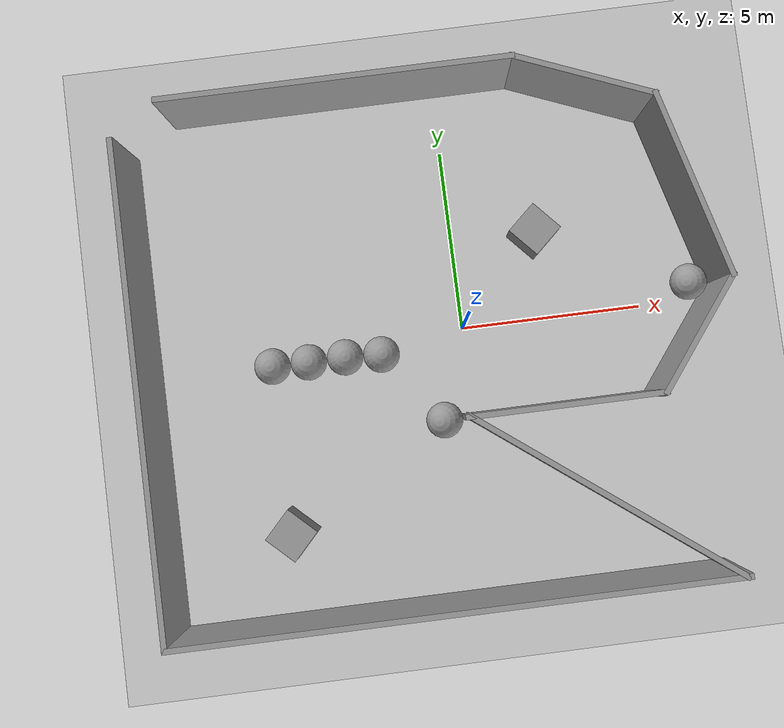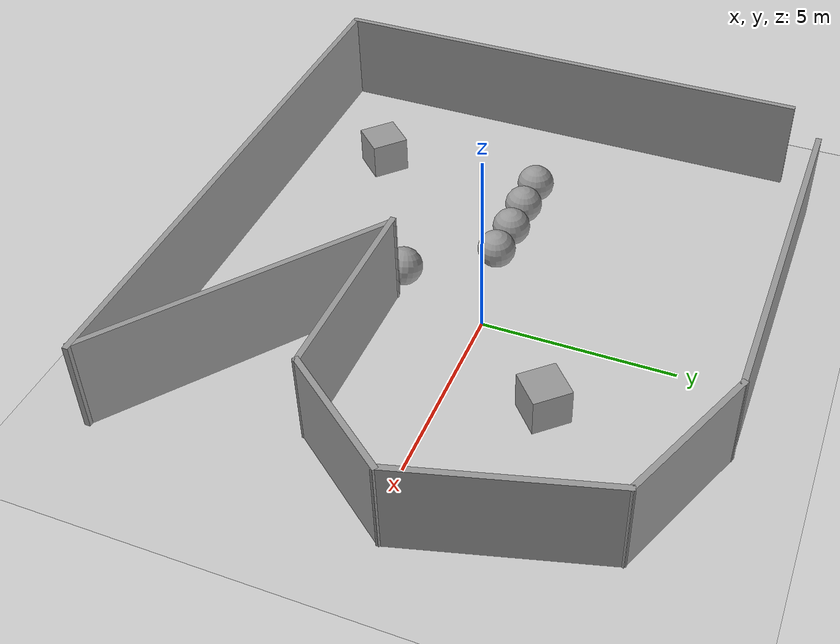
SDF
<sdf version="1.6">
 <world name="default">
  <light name="sun" type="directional">
   <pose>0 0 10 0 -0 0</pose>
   <diffuse>0.8 0.8 0.8 1</diffuse>
   <specular>0.1 0.1 0.1 1</specular>
   <attenuation>
    <range>1000</range>
    <constant>0.9</constant>
    <linear>0.01</linear>
    <quadratic>0.001</quadratic>
   </attenuation>
   <direction>-0.5 0.5 -1</direction>
  </light>
  <model name="ground_plane">
   <static>1</static>
   <link name="link">
    <collision name="collision">
     <geometry><plane><normal>0 0 1</normal><size>100 100</size></plane></geometry>
     <surface><friction><ode><mu>100</mu><mu2>50</mu2></ode></friction></surface>
    </collision>
    <visual name="visual">
     <cast_shadows>0</cast_shadows>
     <geometry><plane><normal>0 0 1</normal><size>100 100</size></plane></geometry>
     <material>
      <script><uri>file://media/materials/scripts/gazebo.material</uri><name>Gazebo/Grey</name></script>
     </material>
    </visual>
   </link>
  </model>
  <physics name="default_physics" default="0" type="ode">
   <max_step_size>0.01</max_step_size>
   <real_time_factor>1</real_time_factor>
   <real_time_update_rate>100</real_time_update_rate>
  </physics>
  <gravity>0 0 -9.8</gravity>
  <magnetic_field>6e-06 2.3e-05 -4.2e-05</magnetic_field>
  <atmosphere type="adiabatic"/>
  <scene><ambient>0.4 0.4 0.4 1</ambient><background>0.7 0.7 0.7 1</background><shadows>1</shadows></scene>
  <spherical_coordinates>
   <surface_model>EARTH_WGS84</surface_model>
   <latitude_deg>0</latitude_deg>
   <longitude_deg>0</longitude_deg>
   <elevation>0</elevation>
   <heading_deg>0</heading_deg>
  </spherical_coordinates>
  <model name="walls_0">
   <pose>-0.768832 -0.284863 0 0 -0 0</pose>
   <link name="Wall_27">
    <collision name="Wall_27_Collision">
     <geometry><box><size>13.25 0.15 2.5</size></box></geometry>
     <pose>0 0 1.25 0 -0 0</pose>
    </collision>
    <visual name="Wall_27_Visual">
     <pose>0 0 1.25 0 -0 0</pose>
     <geometry><box><size>13.25 0.15 2.5</size></box></geometry>
     <material>
      <script><uri>file://media/materials/scripts/gazebo.material</uri><name>Gazebo/Grey</name></script>
      <ambient>1 1 1 1</ambient>
     </material>
    </visual>
    <pose>-7.77304 -0.454938 0 0 0 -1.5708</pose>
   </link>
   <link name="Wall_28">
    <collision name="Wall_28_Collision">
     <geometry><box><size>15 0.15 2.5</size></box></geometry>
     <pose>0 0 1.25 0 -0 0</pose>
    </collision>
    <visual name="Wall_28_Visual">
     <pose>0 0 1.25 0 -0 0</pose>
     <geometry><box><size>15 0.15 2.5</size></box></geometry>
     <material>
      <script><uri>file://media/materials/scripts/gazebo.material</uri><name>Gazebo/Grey</name></script>
      <ambient>1 1 1 1</ambient>
     </material>
    </visual>
    <pose>-0.348036 -7.00494 0 0 -0 0</pose>
   </link>
   <link name="Wall_29">
    <collision name="Wall_29_Collision">
     <geometry><box><size>8.18875 0.15 2.5</size></box></geometry>
     <pose>0 0 1.25 0 -0 0</pose>
    </collision>
    <visual name="Wall_29_Visual">
     <pose>0 0 1.25 0 -0 0</pose>
     <geometry><box><size>8.18875 0.15 2.5</size></box></geometry>
     <material>
      <script><uri>file://media/materials/scripts/gazebo.material</uri><name>Gazebo/Grey</name></script>
      <ambient>1 1 1 1</ambient>
     </material>
    </visual>
    <pose>3.81162 -4.57782 0 0 -0 2.49326</pose>
   </link>
   <link name="Wall_30">
    <collision name="Wall_30_Collision">
     <geometry><box><size>5.25 0.15 2.5</size></box></geometry>
     <pose>0 0 1.25 0 -0 0</pose>
    </collision>
    <visual name="Wall_30_Visual">
     <pose>0 0 1.25 0 -0 0</pose>
     <geometry><box><size>5.25 0.15 2.5</size></box></geometry>
     <material>
      <script><uri>file://media/materials/scripts/gazebo.material</uri><name>Gazebo/Grey</name></script>
      <ambient>1 1 1 1</ambient>
     </material>
    </visual>
    <pose>3.08704 -2.15069 0 0 -0 0</pose>
   </link>
   <link name="Wall_31">
    <collision name="Wall_31_Collision">
     <geometry><box><size>3.64391 0.15 2.5</size></box></geometry>
     <pose>0 0 1.25 0 -0 0</pose>
    </collision>
    <visual name="Wall_31_Visual">
     <pose>0 0 1.25 0 -0 0</pose>
     <geometry><box><size>3.64391 0.15 2.5</size></box></geometry>
     <material>
      <script><uri>file://media/materials/scripts/gazebo.material</uri><name>Gazebo/Grey</name></script>
      <ambient>1 1 1 1</ambient>
     </material>
    </visual>
    <pose>6.69001 -0.756743 0 0 -0 0.923856</pose>
   </link>
   <link name="Wall_32">
    <collision name="Wall_32_Collision">
     <geometry><box><size>5.25 0.15 2.5</size></box></geometry>
     <pose>0 0 1.25 0 -0 0</pose>
    </collision>
    <visual name="Wall_32_Visual">
     <pose>0 0 1.25 0 -0 0</pose>
     <geometry><box><size>5.25 0.15 2.5</size></box></geometry>
     <material>
      <script><uri>file://media/materials/scripts/gazebo.material</uri><name>Gazebo/Grey</name></script>
      <ambient>1 1 1 1</ambient>
     </material>
    </visual>
    <pose>7.083 3.10032 0 0 -0 1.8326</pose>
   </link>
   <link name="Wall_33">
    <collision name="Wall_33_Collision">
     <geometry><box><size>4.0045 0.15 2.5</size></box></geometry>
     <pose>0 0 1.25 0 -0 0</pose>
    </collision>
    <visual name="Wall_33_Visual">
     <pose>0 0 1.25 0 -0 0</pose>
     <geometry><box><size>4.0045 0.15 2.5</size></box></geometry>
     <material>
      <script><uri>file://media/materials/scripts/gazebo.material</uri><name>Gazebo/Grey</name></script>
      <ambient>1 1 1 1</ambient>
     </material>
    </visual>
    <pose>4.6371 6.28787 0 0 -0 2.75623</pose>
   </link>
   <link name="Wall_34">
    <collision name="Wall_34_Collision">
     <geometry><box><size>9.5 0.15 2.5</size></box></geometry>
     <pose>0 0 1.25 0 -0 0</pose>
    </collision>
    <visual name="Wall_34_Visual">
     <pose>0 0 1.25 0 -0 0</pose>
     <geometry><box><size>9.5 0.15 2.5</size></box></geometry>
     <material>
      <script><uri>file://media/materials/scripts/gazebo.material</uri><name>Gazebo/Grey</name></script>
      <ambient>1 1 1 1</ambient>
     </material>
    </visual>
    <pose>-1.82381 7.01232 0 0 -0 3.14159</pose>
   </link>
   <static>1</static>
  </model>
  <model name="unit_sphere_0">
   <pose>-5.32703 -0.421709 0.5 0.001882 -0.043996 0.007189</pose>
   <link name="link">
    <inertial>
     <mass>1</mass>
     <inertia><ixx>0.1</ixx><ixy>0</ixy><ixz>0</ixz><iyy>0.1</iyy><iyz>0</iyz><izz>0.1</izz></inertia>
    </inertial>
    <collision name="collision"><geometry><sphere><radius>0.5</radius></sphere></geometry></collision>
    <visual name="visual">
     <geometry><sphere><radius>0.5</radius></sphere></geometry>
     <material>
      <script><name>Gazebo/Grey</name><uri>file://media/materials/scripts/gazebo.material</uri></script>
     </material>
    </visual>
   </link>
  </model>
  <model name="unit_sphere_0_clone">
   <pose>-4.32595 -0.428661 0.5 -0.042274 0.017917 -0.006474</pose>
   <link name="link">
    <inertial>
     <mass>1</mass>
     <inertia><ixx>0.1</ixx><ixy>0</ixy><ixz>0</ixz><iyy>0.1</iyy><iyz>0</iyz><izz>0.1</izz></inertia>
    </inertial>
    <collision name="collision"><geometry><sphere><radius>0.5</radius></sphere></geometry></collision>
    <visual name="visual">
     <geometry><sphere><radius>0.5</radius></sphere></geometry>
     <material>
      <script><name>Gazebo/Grey</name><uri>file://media/materials/scripts/gazebo.material</uri></script>
     </material>
    </visual>
   </link>
  </model>
  <model name="unit_sphere_0_clone_0">
   <pose>-3.31616 -0.417481 0.5 -0.000943 0.061278 -0.01527</pose>
   <link name="link">
    <inertial>
     <mass>1</mass>
     <inertia><ixx>0.1</ixx><ixy>0</ixy><ixz>0</ixz><iyy>0.1</iyy><iyz>0</iyz><izz>0.1</izz></inertia>
    </inertial>
    <collision name="collision"><geometry><sphere><radius>0.5</radius></sphere></geometry></collision>
    <visual name="visual">
     <geometry><sphere><radius>0.5</radius></sphere></geometry>
     <material>
      <script><name>Gazebo/Grey</name><uri>file://media/materials/scripts/gazebo.material</uri></script>
     </material>
    </visual>
   </link>
  </model>
  <model name="unit_sphere_0_clone_1">
   <pose>-2.31521 -0.466723 0.5 0.006911 0.084887 0.004116</pose>
   <link name="link">
    <inertial>
     <mass>1</mass>
     <inertia><ixx>0.1</ixx><ixy>0</ixy><ixz>0</ixz><iyy>0.1</iyy><iyz>0</iyz><izz>0.1</izz></inertia>
    </inertial>
    <collision name="collision"><geometry><sphere><radius>0.5</radius></sphere></geometry></collision>
    <visual name="visual">
     <geometry><sphere><radius>0.5</radius></sphere></geometry>
     <material>
      <script><name>Gazebo/Grey</name><uri>file://media/materials/scripts/gazebo.material</uri></script>
     </material>
    </visual>
   </link>
  </model>
  <model name="unit_sphere_0_clone_2">
   <pose>-0.81497 -2.46796 0.5 -0.00025 -0.328498 0.007588</pose>
   <link name="link">
    <inertial>
     <mass>1</mass>
     <inertia><ixx>0.1</ixx><ixy>0</ixy><ixz>0</ixz><iyy>0.1</iyy><iyz>0</iyz><izz>0.1</izz></inertia>
    </inertial>
    <collision name="collision"><geometry><sphere><radius>0.5</radius></sphere></geometry></collision>
    <visual name="visual">
     <geometry><sphere><radius>0.5</radius></sphere></geometry>
     <material>
      <script><name>Gazebo/Grey</name><uri>file://media/materials/scripts/gazebo.material</uri></script>
     </material>
    </visual>
   </link>
  </model>
  <model name="unit_box_0_0">
   <pose>-5.2775 -5.00775 0.499795 -3.14152 -1.57039 2.3871</pose>
   <link name="link">
    <inertial>
     <mass>1</mass>
     <inertia>
      <ixx>0.166667</ixx>
      <ixy>0</ixy>
      <ixz>0</ixz>
      <iyy>0.166667</iyy>
      <iyz>0</iyz>
      <izz>0.166667</izz>
     </inertia>
    </inertial>
    <collision name="collision"><geometry><box><size>1 1 1</size></box></geometry></collision>
    <visual name="visual">
     <geometry><box><size>1 1 1</size></box></geometry>
     <material>
      <script><name>Gazebo/Grey</name><uri>file://media/materials/scripts/gazebo.material</uri></script>
     </material>
    </visual>
   </link>
  </model>
  <model name="unit_box_0_1">
   <pose>2.27168 2.38834 0.499795 0 -0.00041 0.736503</pose>
   <link name="link">
    <inertial>
     <mass>1</mass>
     <inertia>
      <ixx>0.166667</ixx>
      <ixy>0</ixy>
      <ixz>0</ixz>
      <iyy>0.166667</iyy>
      <iyz>0</iyz>
      <izz>0.166667</izz>
     </inertia>
    </inertial>
    <collision name="collision"><geometry><box><size>1 1 1</size></box></geometry></collision>
    <visual name="visual">
     <geometry><box><size>1 1 1</size></box></geometry>
     <material>
      <script><name>Gazebo/Grey</name><uri>file://media/materials/scripts/gazebo.material</uri></script>
     </material>
    </visual>
   </link>
  </model>
  <model name="unit_sphere_0_clone_2_clone">
   <pose>6.34606 0.474832 0.5 0.01781 -0.366916 -0.01419</pose>
   <link name="link">
    <inertial>
     <mass>1</mass>
     <inertia><ixx>0.1</ixx><ixy>0</ixy><ixz>0</ixz><iyy>0.1</iyy><iyz>0</iyz><izz>0.1</izz></inertia>
    </inertial>
    <collision name="collision"><geometry><sphere><radius>0.5</radius></sphere></geometry></collision>
    <visual name="visual">
     <geometry><sphere><radius>0.5</radius></sphere></geometry>
     <material>
      <script><name>Gazebo/Grey</name><uri>file://media/materials/scripts/gazebo.material</uri></script>
     </material>
    </visual>
   </link>
  </model>
 </world>
</sdf>
